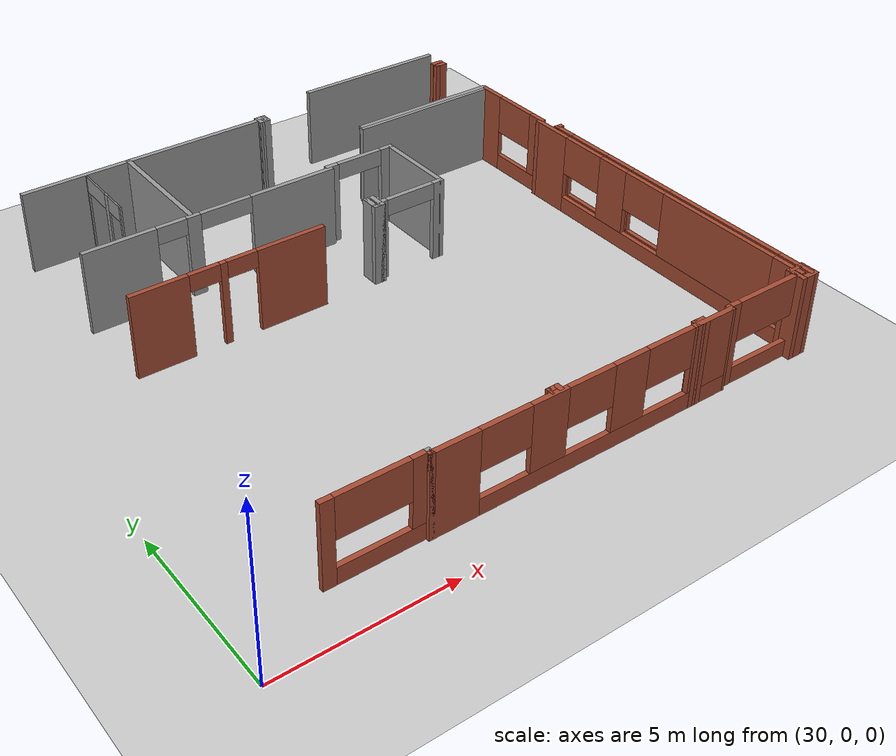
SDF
<sdf version="1.6">
 <world name="default">
  <model name="ground_plane">
   <static>1</static>
   <link name="link">
    <collision name="collision">
     <geometry><plane><normal>0 0 1</normal><size>100 100</size></plane></geometry>
     <surface><friction><ode><mu>100</mu><mu2>50</mu2></ode></friction></surface>
    </collision>
    <visual name="visual">
     <cast_shadows>0</cast_shadows>
     <geometry><plane><normal>0 0 1</normal><size>100 100</size></plane></geometry>
     <material>
      <script><uri>file://media/materials/scripts/gazebo.material</uri><name>Gazebo/Grey</name></script>
     </material>
    </visual>
   </link>
  </model>
  <model name="CVSSP">
   <pose>23.8714 24.094 0 0 -0 0</pose>
   <link name="Wall_115">
    <pose>12.4857 -11.244 0 0 -0 3.14117</pose>
    <visual name="Wall_115_Visual_0">
     <pose>-2.52803 0 1.25 0 -0 0</pose>
     <geometry><box><size>2.69541 0.15 2.5</size></box></geometry>
     <material>
      <script><uri>file://media/materials/scripts/gazebo.material</uri><name>Gazebo/Grey</name></script>
      <ambient>0.588235 0.588235 0.588235 1</ambient>
     </material>
    </visual>
    <collision name="Wall_115_Collision_0">
     <geometry><box><size>2.69541 0.15 2.5</size></box></geometry>
     <pose>-2.52803 0 1.25 0 -0 0</pose>
    </collision>
    <visual name="Wall_115_Visual_1">
     <pose>0.612242 0 1.25 0 -0 0</pose>
     <geometry><box><size>0.417444 0.15 2.5</size></box></geometry>
     <material>
      <script><uri>file://media/materials/scripts/gazebo.material</uri><name>Gazebo/Grey</name></script>
      <ambient>0.588235 0.588235 0.588235 1</ambient>
     </material>
    </visual>
    <collision name="Wall_115_Collision_1">
     <geometry><box><size>0.417444 0.15 2.5</size></box></geometry>
     <pose>0.612242 0 1.25 0 -0 0</pose>
    </collision>
    <visual name="Wall_115_Visual_2">
     <pose>2.79835 0 1.25 0 -0 0</pose>
     <geometry><box><size>2.15477 0.15 2.5</size></box></geometry>
     <material>
      <script><uri>file://media/materials/scripts/gazebo.material</uri><name>Gazebo/Grey</name></script>
      <ambient>0.588235 0.588235 0.588235 1</ambient>
     </material>
    </visual>
    <collision name="Wall_115_Collision_2">
     <geometry><box><size>2.15477 0.15 2.5</size></box></geometry>
     <pose>2.79835 0 1.25 0 -0 0</pose>
    </collision>
    <visual name="Wall_115_Visual_3">
     <pose>-0.388402 0 2.25 0 -0 0</pose>
     <geometry><box><size>1.58384 0.15 0.5</size></box></geometry>
     <material>
      <script><uri>file://media/materials/scripts/gazebo.material</uri><name>Gazebo/Grey</name></script>
      <ambient>0.588235 0.588235 0.588235 1</ambient>
     </material>
    </visual>
    <collision name="Wall_115_Collision_3">
     <geometry><box><size>1.58384 0.15 0.5</size></box></geometry>
     <pose>-0.388402 0 2.25 0 -0 0</pose>
    </collision>
    <visual name="Wall_115_Visual_4">
     <pose>1.27096 0 2.25 0 -0 0</pose>
     <geometry><box><size>0.9 0.15 0.5</size></box></geometry>
     <material>
      <script><uri>file://media/materials/scripts/gazebo.material</uri><name>Gazebo/Grey</name></script>
      <ambient>0.588235 0.588235 0.588235 1</ambient>
     </material>
    </visual>
    <collision name="Wall_115_Collision_4">
     <geometry><box><size>0.9 0.15 0.5</size></box></geometry>
     <pose>1.27096 0 2.25 0 -0 0</pose>
    </collision>
   </link>
   <link name="Wall_127">
    <collision name="Wall_127_Collision">
     <geometry><box><size>7.75 0.15 2.5</size></box></geometry>
     <pose>0 0 1.25 0 -0 0</pose>
    </collision>
    <visual name="Wall_127_Visual">
     <pose>0 0 1.25 0 -0 0</pose>
     <geometry><box><size>7.75 0.15 2.5</size></box></geometry>
     <material>
      <script><uri>file://media/materials/scripts/gazebo.material</uri><name>Gazebo/Grey</name></script>
      <ambient>0.588235 0.588235 0.588235 1</ambient>
     </material>
    </visual>
    <pose>12.4552 -7.51532 0 0 -0 0</pose>
   </link>
   <link name="Wall_129">
    <collision name="Wall_129_Collision">
     <geometry><box><size>3.75 0.15 2.5</size></box></geometry>
     <pose>0 0 1.25 0 -0 0</pose>
    </collision>
    <visual name="Wall_129_Visual">
     <pose>0 0 1.25 0 -0 0</pose>
     <geometry><box><size>3.75 0.15 2.5</size></box></geometry>
     <material>
      <script><uri>file://media/materials/scripts/gazebo.material</uri><name>Gazebo/Grey</name></script>
      <ambient>1 1 1 1</ambient>
     </material>
    </visual>
    <pose>11.8522 -9.31531 0 0 0 -1.5708</pose>
   </link>
   <link name="Wall_133">
    <collision name="Wall_133_Collision">
     <geometry><box><size>4.75 0.15 2.5</size></box></geometry>
     <pose>0 0 1.25 0 -0 0</pose>
    </collision>
    <visual name="Wall_133_Visual">
     <pose>0 0 1.25 0 -0 0</pose>
     <geometry><box><size>4.75 0.15 2.5</size></box></geometry>
     <material>
      <script><uri>file://media/materials/scripts/gazebo.material</uri><name>Gazebo/Grey</name></script>
      <ambient>1 1 1 1</ambient>
     </material>
    </visual>
    <pose>20.7823 -9.67291 0 0 -0 0</pose>
   </link>
   <link name="Wall_15">
    <pose>17.354 -11.1314 0 0 0 -0.000796</pose>
    <visual name="Wall_15_Visual_0">
     <pose>-0.94801 0 1.25 0 -0 0</pose>
     <geometry><box><size>0.40353 0.15 2.5</size></box></geometry>
     <material>
      <script><uri>file://media/materials/scripts/gazebo.material</uri><name>Gazebo/Grey</name></script>
      <ambient>0.588235 0.588235 0.588235 1</ambient>
     </material>
    </visual>
    <collision name="Wall_15_Collision_0">
     <geometry><box><size>0.40353 0.15 2.5</size></box></geometry>
     <pose>-0.94801 0 1.25 0 -0 0</pose>
    </collision>
    <visual name="Wall_15_Visual_1">
     <pose>0.933339 0 1.25 0 -0 0</pose>
     <geometry><box><size>0.432873 0.15 2.5</size></box></geometry>
     <material>
      <script><uri>file://media/materials/scripts/gazebo.material</uri><name>Gazebo/Grey</name></script>
      <ambient>0.588235 0.588235 0.588235 1</ambient>
     </material>
    </visual>
    <collision name="Wall_15_Collision_1">
     <geometry><box><size>0.432873 0.15 2.5</size></box></geometry>
     <pose>0.933339 0 1.25 0 -0 0</pose>
    </collision>
    <visual name="Wall_15_Visual_2">
     <pose>-0.014671 0 2.25 0 -0 0</pose>
     <geometry><box><size>1.46315 0.15 0.5</size></box></geometry>
     <material>
      <script><uri>file://media/materials/scripts/gazebo.material</uri><name>Gazebo/Grey</name></script>
      <ambient>0.588235 0.588235 0.588235 1</ambient>
     </material>
    </visual>
    <collision name="Wall_15_Collision_2">
     <geometry><box><size>1.46315 0.15 0.5</size></box></geometry>
     <pose>-0.014671 0 2.25 0 -0 0</pose>
    </collision>
   </link>
   <link name="Wall_150">
    <collision name="Wall_150_Collision">
     <geometry><box><size>4.80423 0.15 2.5</size></box></geometry>
     <pose>0 0 1.25 0 -0 0</pose>
    </collision>
    <visual name="Wall_150_Visual">
     <pose>0 0 1.25 0 -0 0</pose>
     <geometry><box><size>4.80423 0.15 2.5</size></box></geometry>
     <material>
      <script><uri>file://media/materials/scripts/gazebo.material</uri><name>Gazebo/Grey</name></script>
      <ambient>0.588235 0.588235 0.588235 1</ambient>
     </material>
    </visual>
    <pose>20.7564 -9.78108 0 0 -0 0.001313</pose>
   </link>
   <link name="Wall_151">
    <pose>23.0856 -11.1326 0 0 0 -1.56927</pose>
    <visual name="Wall_151_Visual_0">
     <pose>-0.991338 0 1.25 0 -0 0</pose>
     <geometry><box><size>0.876406 0.15 2.5</size></box></geometry>
     <material>
      <script><uri>file://media/materials/scripts/gazebo.material</uri><name>Gazebo/Bricks</name></script>
      <ambient>1 1 1 1</ambient>
     </material>
    </visual>
    <collision name="Wall_151_Collision_0">
     <geometry><box><size>0.876406 0.15 2.5</size></box></geometry>
     <pose>-0.991338 0 1.25 0 -0 0</pose>
    </collision>
    <visual name="Wall_151_Visual_1">
     <pose>0.438203 0 0.25 0 -0 0</pose>
     <geometry><box><size>1.98267 0.15 0.5</size></box></geometry>
     <material>
      <script><uri>file://media/materials/scripts/gazebo.material</uri><name>Gazebo/Bricks</name></script>
      <ambient>1 1 1 1</ambient>
     </material>
    </visual>
    <collision name="Wall_151_Collision_1">
     <geometry><box><size>1.98267 0.15 0.5</size></box></geometry>
     <pose>0.438203 0 0.25 0 -0 0</pose>
    </collision>
    <visual name="Wall_151_Visual_2">
     <pose>1.14601 0 1.5 0 -0 0</pose>
     <geometry><box><size>0.567066 0.15 2</size></box></geometry>
     <material>
      <script><uri>file://media/materials/scripts/gazebo.material</uri><name>Gazebo/Bricks</name></script>
      <ambient>1 1 1 1</ambient>
     </material>
    </visual>
    <collision name="Wall_151_Collision_2">
     <geometry><box><size>0.567066 0.15 2</size></box></geometry>
     <pose>1.14601 0 1.5 0 -0 0</pose>
    </collision>
    <visual name="Wall_151_Visual_3">
     <pose>0.15467 0 1.9 0 -0 0</pose>
     <geometry><box><size>1.41561 0.15 1.2</size></box></geometry>
     <material>
      <script><uri>file://media/materials/scripts/gazebo.material</uri><name>Gazebo/Bricks</name></script>
      <ambient>1 1 1 1</ambient>
     </material>
    </visual>
    <collision name="Wall_151_Collision_3">
     <geometry><box><size>1.41561 0.15 1.2</size></box></geometry>
     <pose>0.15467 0 1.9 0 -0 0</pose>
    </collision>
   </link>
   <link name="Wall_152">
    <collision name="Wall_152_Collision">
     <geometry><box><size>0.258168 0.15 2.5</size></box></geometry>
     <pose>0 0 1.25 0 -0 0</pose>
    </collision>
    <visual name="Wall_152_Visual">
     <pose>0 0 1.25 0 -0 0</pose>
     <geometry><box><size>0.258168 0.15 2.5</size></box></geometry>
     <material>
      <script><uri>file://media/materials/scripts/gazebo.material</uri><name>Gazebo/Bricks</name></script>
      <ambient>1 1 1 1</ambient>
     </material>
    </visual>
    <pose>23.0336 -12.4904 0 0 -0 3.14159</pose>
   </link>
   <link name="Wall_153">
    <pose>22.9796 -17.562 0 0 0 -1.5708</pose>
    <visual name="Wall_153_Visual_0">
     <pose>-4.47045 0 1.25 0 -0 0</pose>
     <geometry><box><size>1.35898 0.15 2.5</size></box></geometry>
     <material>
      <script><uri>file://media/materials/scripts/gazebo.material</uri><name>Gazebo/Bricks</name></script>
      <ambient>1 1 1 1</ambient>
     </material>
    </visual>
    <collision name="Wall_153_Collision_0">
     <geometry><box><size>1.35898 0.15 2.5</size></box></geometry>
     <pose>-4.47045 0 1.25 0 -0 0</pose>
    </collision>
    <visual name="Wall_153_Visual_1">
     <pose>0.679489 0 0.25 0 -0 0</pose>
     <geometry><box><size>8.9409 0.15 0.5</size></box></geometry>
     <material>
      <script><uri>file://media/materials/scripts/gazebo.material</uri><name>Gazebo/Bricks</name></script>
      <ambient>1 1 1 1</ambient>
     </material>
    </visual>
    <collision name="Wall_153_Collision_1">
     <geometry><box><size>8.9409 0.15 0.5</size></box></geometry>
     <pose>0.679489 0 0.25 0 -0 0</pose>
    </collision>
    <visual name="Wall_153_Visual_2">
     <pose>-1.77367 0 1.5 0 -0 0</pose>
     <geometry><box><size>1.06672 0.15 2</size></box></geometry>
     <material>
      <script><uri>file://media/materials/scripts/gazebo.material</uri><name>Gazebo/Bricks</name></script>
      <ambient>1 1 1 1</ambient>
     </material>
    </visual>
    <collision name="Wall_153_Collision_2">
     <geometry><box><size>1.06672 0.15 2</size></box></geometry>
     <pose>-1.77367 0 1.5 0 -0 0</pose>
    </collision>
    <visual name="Wall_153_Visual_3">
     <pose>2.21324 0 1.5 0 -0 0</pose>
     <geometry><box><size>3.95063 0.15 2</size></box></geometry>
     <material>
      <script><uri>file://media/materials/scripts/gazebo.material</uri><name>Gazebo/Bricks</name></script>
      <ambient>1 1 1 1</ambient>
     </material>
    </visual>
    <collision name="Wall_153_Collision_3">
     <geometry><box><size>3.95063 0.15 2</size></box></geometry>
     <pose>2.21324 0 1.5 0 -0 0</pose>
    </collision>
    <visual name="Wall_153_Visual_4">
     <pose>4.97864 0 1.5 0 -0 0</pose>
     <geometry><box><size>0.342598 0.15 2</size></box></geometry>
     <material>
      <script><uri>file://media/materials/scripts/gazebo.material</uri><name>Gazebo/Bricks</name></script>
      <ambient>1 1 1 1</ambient>
     </material>
    </visual>
    <collision name="Wall_153_Collision_4">
     <geometry><box><size>0.342598 0.15 2</size></box></geometry>
     <pose>4.97864 0 1.5 0 -0 0</pose>
    </collision>
    <visual name="Wall_153_Visual_5">
     <pose>-3.04899 0 1.9 0 -0 0</pose>
     <geometry><box><size>1.48394 0.15 1.2</size></box></geometry>
     <material>
      <script><uri>file://media/materials/scripts/gazebo.material</uri><name>Gazebo/Bricks</name></script>
      <ambient>1 1 1 1</ambient>
     </material>
    </visual>
    <collision name="Wall_153_Collision_5">
     <geometry><box><size>1.48394 0.15 1.2</size></box></geometry>
     <pose>-3.04899 0 1.9 0 -0 0</pose>
    </collision>
    <visual name="Wall_153_Visual_6">
     <pose>-0.50119 0 1.9 0 -0 0</pose>
     <geometry><box><size>1.47823 0.15 1.2</size></box></geometry>
     <material>
      <script><uri>file://media/materials/scripts/gazebo.material</uri><name>Gazebo/Bricks</name></script>
      <ambient>1 1 1 1</ambient>
     </material>
    </visual>
    <collision name="Wall_153_Collision_6">
     <geometry><box><size>1.47823 0.15 1.2</size></box></geometry>
     <pose>-0.50119 0 1.9 0 -0 0</pose>
    </collision>
    <visual name="Wall_153_Visual_7">
     <pose>4.49795 0 1.9 0 -0 0</pose>
     <geometry><box><size>0.618781 0.15 1.2</size></box></geometry>
     <material>
      <script><uri>file://media/materials/scripts/gazebo.material</uri><name>Gazebo/Bricks</name></script>
      <ambient>1 1 1 1</ambient>
     </material>
    </visual>
    <collision name="Wall_153_Collision_7">
     <geometry><box><size>0.618781 0.15 1.2</size></box></geometry>
     <pose>4.49795 0 1.9 0 -0 0</pose>
    </collision>
   </link>
   <link name="Wall_157">
    <pose>23.1934 -17.9306 0 0 0 -1.5708</pose>
    <visual name="Wall_157_Visual_0">
     <pose>-4.53836 0 1.25 0 -0 0</pose>
     <geometry><box><size>0.746297 0.15 2.5</size></box></geometry>
     <material>
      <script><uri>file://media/materials/scripts/gazebo.material</uri><name>Gazebo/Bricks</name></script>
      <ambient>1 1 1 1</ambient>
     </material>
    </visual>
    <collision name="Wall_157_Collision_0">
     <geometry><box><size>0.746297 0.15 2.5</size></box></geometry>
     <pose>-4.53836 0 1.25 0 -0 0</pose>
    </collision>
    <visual name="Wall_157_Visual_1">
     <pose>0.373148 0 0.25 0 -0 0</pose>
     <geometry><box><size>9.07673 0.15 0.5</size></box></geometry>
     <material>
      <script><uri>file://media/materials/scripts/gazebo.material</uri><name>Gazebo/Bricks</name></script>
      <ambient>1 1 1 1</ambient>
     </material>
    </visual>
    <collision name="Wall_157_Collision_1">
     <geometry><box><size>9.07673 0.15 0.5</size></box></geometry>
     <pose>0.373148 0 0.25 0 -0 0</pose>
    </collision>
    <visual name="Wall_157_Visual_2">
     <pose>-2.13652 0 1.5 0 -0 0</pose>
     <geometry><box><size>1.06672 0.15 2</size></box></geometry>
     <material>
      <script><uri>file://media/materials/scripts/gazebo.material</uri><name>Gazebo/Bricks</name></script>
      <ambient>1 1 1 1</ambient>
     </material>
    </visual>
    <collision name="Wall_157_Collision_2">
     <geometry><box><size>1.06672 0.15 2</size></box></geometry>
     <pose>-2.13652 0 1.5 0 -0 0</pose>
    </collision>
    <visual name="Wall_157_Visual_3">
     <pose>1.84748 0 1.5 0 -0 0</pose>
     <geometry><box><size>3.94482 0.15 2</size></box></geometry>
     <material>
      <script><uri>file://media/materials/scripts/gazebo.material</uri><name>Gazebo/Bricks</name></script>
      <ambient>1 1 1 1</ambient>
     </material>
    </visual>
    <collision name="Wall_157_Collision_3">
     <geometry><box><size>3.94482 0.15 2</size></box></geometry>
     <pose>1.84748 0 1.5 0 -0 0</pose>
    </collision>
    <visual name="Wall_157_Visual_4">
     <pose>4.66639 0 1.5 0 -0 0</pose>
     <geometry><box><size>0.49024 0.15 2</size></box></geometry>
     <material>
      <script><uri>file://media/materials/scripts/gazebo.material</uri><name>Gazebo/Bricks</name></script>
      <ambient>1 1 1 1</ambient>
     </material>
    </visual>
    <collision name="Wall_157_Collision_4">
     <geometry><box><size>0.49024 0.15 2</size></box></geometry>
     <pose>4.66639 0 1.5 0 -0 0</pose>
    </collision>
    <visual name="Wall_157_Visual_5">
     <pose>-3.41755 0 1.9 0 -0 0</pose>
     <geometry><box><size>1.49533 0.15 1.2</size></box></geometry>
     <material>
      <script><uri>file://media/materials/scripts/gazebo.material</uri><name>Gazebo/Bricks</name></script>
      <ambient>1 1 1 1</ambient>
     </material>
    </visual>
    <collision name="Wall_157_Collision_5">
     <geometry><box><size>1.49533 0.15 1.2</size></box></geometry>
     <pose>-3.41755 0 1.9 0 -0 0</pose>
    </collision>
    <visual name="Wall_157_Visual_6">
     <pose>-0.864046 0 1.9 0 -0 0</pose>
     <geometry><box><size>1.47823 0.15 1.2</size></box></geometry>
     <material>
      <script><uri>file://media/materials/scripts/gazebo.material</uri><name>Gazebo/Bricks</name></script>
      <ambient>1 1 1 1</ambient>
     </material>
    </visual>
    <collision name="Wall_157_Collision_6">
     <geometry><box><size>1.47823 0.15 1.2</size></box></geometry>
     <pose>-0.864046 0 1.9 0 -0 0</pose>
    </collision>
    <visual name="Wall_157_Visual_7">
     <pose>4.12058 0 1.9 0 -0 0</pose>
     <geometry><box><size>0.601383 0.15 1.2</size></box></geometry>
     <material>
      <script><uri>file://media/materials/scripts/gazebo.material</uri><name>Gazebo/Bricks</name></script>
      <ambient>1 1 1 1</ambient>
     </material>
    </visual>
    <collision name="Wall_157_Collision_7">
     <geometry><box><size>0.601383 0.15 1.2</size></box></geometry>
     <pose>4.12058 0 1.9 0 -0 0</pose>
    </collision>
   </link>
   <link name="Wall_161">
    <collision name="Wall_161_Collision">
     <geometry><box><size>0.590287 0.15 2.5</size></box></geometry>
     <pose>0 0 1.25 0 -0 0</pose>
    </collision>
    <visual name="Wall_161_Visual">
     <pose>0 0 1.25 0 -0 0</pose>
     <geometry><box><size>0.590287 0.15 2.5</size></box></geometry>
     <material>
      <script><uri>file://media/materials/scripts/gazebo.material</uri><name>Gazebo/Bricks</name></script>
      <ambient>1 1 1 1</ambient>
     </material>
    </visual>
    <pose>23.0292 -22.4138 0 0 -0 0</pose>
   </link>
   <link name="Wall_162">
    <collision name="Wall_162_Collision">
     <geometry><box><size>0.573252 0.15 2.5</size></box></geometry>
     <pose>0 0 1.25 0 -0 0</pose>
    </collision>
    <visual name="Wall_162_Visual">
     <pose>0 0 1.25 0 -0 0</pose>
     <geometry><box><size>0.573252 0.15 2.5</size></box></geometry>
     <material>
      <script><uri>file://media/materials/scripts/gazebo.material</uri><name>Gazebo/Bricks</name></script>
      <ambient>1 1 1 1</ambient>
     </material>
    </visual>
    <pose>23.2493 -22.6253 0 0 0 -1.5708</pose>
   </link>
   <link name="Wall_163">
    <collision name="Wall_163_Collision">
     <geometry><box><size>0.584532 0.15 2.5</size></box></geometry>
     <pose>0 0 1.25 0 -0 0</pose>
    </collision>
    <visual name="Wall_163_Visual">
     <pose>0 0 1.25 0 -0 0</pose>
     <geometry><box><size>0.584532 0.15 2.5</size></box></geometry>
     <material>
      <script><uri>file://media/materials/scripts/gazebo.material</uri><name>Gazebo/Bricks</name></script>
      <ambient>1 1 1 1</ambient>
     </material>
    </visual>
    <pose>23.0321 -22.8369 0 0 -0 3.14159</pose>
   </link>
   <link name="Wall_164">
    <collision name="Wall_164_Collision">
     <geometry><box><size>0.567536 0.15 2.5</size></box></geometry>
     <pose>0 0 1.25 0 -0 0</pose>
    </collision>
    <visual name="Wall_164_Visual">
     <pose>0 0 1.25 0 -0 0</pose>
     <geometry><box><size>0.567536 0.15 2.5</size></box></geometry>
     <material>
      <script><uri>file://media/materials/scripts/gazebo.material</uri><name>Gazebo/Bricks</name></script>
      <ambient>1 1 1 1</ambient>
     </material>
    </visual>
    <pose>22.8148 -22.6282 0 0 -0 1.5708</pose>
   </link>
   <link name="Wall_166">
    <collision name="Wall_166_Collision">
     <geometry><box><size>4.75 0.15 2.5</size></box></geometry>
     <pose>0 0 1.25 0 -0 0</pose>
    </collision>
    <visual name="Wall_166_Visual">
     <pose>0 0 1.25 0 -0 0</pose>
     <geometry><box><size>4.75 0.15 2.5</size></box></geometry>
     <material>
      <script><uri>file://media/materials/scripts/gazebo.material</uri><name>Gazebo/Grey</name></script>
      <ambient>0.588235 0.588235 0.588235 1</ambient>
     </material>
    </visual>
    <pose>20.7514 -6.79871 0 0 -0 0</pose>
   </link>
   <link name="Wall_174">
    <collision name="Wall_174_Collision">
     <geometry><box><size>2.59517 0.15 2.5</size></box></geometry>
     <pose>0 0 1.25 0 -0 0</pose>
    </collision>
    <visual name="Wall_174_Visual">
     <pose>0 0 1.25 0 -0 0</pose>
     <geometry><box><size>2.59517 0.15 2.5</size></box></geometry>
     <material>
      <script><uri>file://media/materials/scripts/gazebo.material</uri><name>Gazebo/Grey</name></script>
      <ambient>0.588235 0.588235 0.588235 1</ambient>
     </material>
    </visual>
    <pose>18.4291 -12.3547 0 0 0 -1.5705</pose>
   </link>
   <link name="Wall_175">
    <pose>17.3795 -13.5773 0 0 -0 3.14159</pose>
    <visual name="Wall_175_Visual_0">
     <pose>-0.944345 0 1.25 0 -0 0</pose>
     <geometry><box><size>0.36131 0.15 2.5</size></box></geometry>
     <material>
      <script><uri>file://media/materials/scripts/gazebo.material</uri><name>Gazebo/Grey</name></script>
      <ambient>0.588235 0.588235 0.588235 1</ambient>
     </material>
    </visual>
    <collision name="Wall_175_Collision_0">
     <geometry><box><size>0.36131 0.15 2.5</size></box></geometry>
     <pose>-0.944345 0 1.25 0 -0 0</pose>
    </collision>
    <visual name="Wall_175_Visual_1">
     <pose>0.960655 0 1.25 0 -0 0</pose>
     <geometry><box><size>0.32869 0.15 2.5</size></box></geometry>
     <material>
      <script><uri>file://media/materials/scripts/gazebo.material</uri><name>Gazebo/Grey</name></script>
      <ambient>0.588235 0.588235 0.588235 1</ambient>
     </material>
    </visual>
    <collision name="Wall_175_Collision_1">
     <geometry><box><size>0.32869 0.15 2.5</size></box></geometry>
     <pose>0.960655 0 1.25 0 -0 0</pose>
    </collision>
    <visual name="Wall_175_Visual_2">
     <pose>0.01631 0 2.25 0 -0 0</pose>
     <geometry><box><size>1.56 0.15 0.5</size></box></geometry>
     <material>
      <script><uri>file://media/materials/scripts/gazebo.material</uri><name>Gazebo/Grey</name></script>
      <ambient>0.588235 0.588235 0.588235 1</ambient>
     </material>
    </visual>
    <collision name="Wall_175_Collision_2">
     <geometry><box><size>1.56 0.15 0.5</size></box></geometry>
     <pose>0.01631 0 2.25 0 -0 0</pose>
    </collision>
   </link>
   <link name="Wall_183">
    <pose>9.90751 -22.6223 0 0 -0 0</pose>
    <visual name="Wall_183_Visual_0">
     <pose>-1.25422 0 1.25 0 -0 0</pose>
     <geometry><box><size>0.361568 0.15 2.5</size></box></geometry>
     <material>
      <script><uri>file://media/materials/scripts/gazebo.material</uri><name>Gazebo/Bricks</name></script>
      <ambient>1 1 1 1</ambient>
     </material>
    </visual>
    <collision name="Wall_183_Collision_0">
     <geometry><box><size>0.361568 0.15 2.5</size></box></geometry>
     <pose>-1.25422 0 1.25 0 -0 0</pose>
    </collision>
    <visual name="Wall_183_Visual_1">
     <pose>0.180784 0 0.25 0 -0 0</pose>
     <geometry><box><size>2.50843 0.15 0.5</size></box></geometry>
     <material>
      <script><uri>file://media/materials/scripts/gazebo.material</uri><name>Gazebo/Bricks</name></script>
      <ambient>1 1 1 1</ambient>
     </material>
    </visual>
    <collision name="Wall_183_Collision_1">
     <geometry><box><size>2.50843 0.15 0.5</size></box></geometry>
     <pose>0.180784 0 0.25 0 -0 0</pose>
    </collision>
    <visual name="Wall_183_Visual_2">
     <pose>1.17403 0 1.5 0 -0 0</pose>
     <geometry><box><size>0.521945 0.15 2</size></box></geometry>
     <material>
      <script><uri>file://media/materials/scripts/gazebo.material</uri><name>Gazebo/Bricks</name></script>
      <ambient>1 1 1 1</ambient>
     </material>
    </visual>
    <collision name="Wall_183_Collision_2">
     <geometry><box><size>0.521945 0.15 2</size></box></geometry>
     <pose>1.17403 0 1.5 0 -0 0</pose>
    </collision>
    <visual name="Wall_183_Visual_3">
     <pose>-0.080189 0 1.9 0 -0 0</pose>
     <geometry><box><size>1.98649 0.15 1.2</size></box></geometry>
     <material>
      <script><uri>file://media/materials/scripts/gazebo.material</uri><name>Gazebo/Bricks</name></script>
      <ambient>1 1 1 1</ambient>
     </material>
    </visual>
    <collision name="Wall_183_Collision_3">
     <geometry><box><size>1.98649 0.15 1.2</size></box></geometry>
     <pose>-0.080189 0 1.9 0 -0 0</pose>
    </collision>
   </link>
   <link name="Wall_184">
    <collision name="Wall_184_Collision">
     <geometry><box><size>0.15 0.15 2.5</size></box></geometry>
     <pose>0 0 1.25 0 -0 0</pose>
    </collision>
    <visual name="Wall_184_Visual">
     <pose>0 0 1.25 0 -0 0</pose>
     <geometry><box><size>0.15 0.15 2.5</size></box></geometry>
     <material>
      <script><uri>file://media/materials/scripts/gazebo.material</uri><name>Gazebo/Grey</name></script>
      <ambient>1 1 1 1</ambient>
     </material>
    </visual>
    <pose>11.2675 -22.6223 0 0 -0 0</pose>
   </link>
   <link name="Wall_186">
    <collision name="Wall_186_Collision">
     <geometry><box><size>0.25 0.15 2.5</size></box></geometry>
     <pose>0 0 1.25 0 -0 0</pose>
    </collision>
    <visual name="Wall_186_Visual">
     <pose>0 0 1.25 0 -0 0</pose>
     <geometry><box><size>0.25 0.15 2.5</size></box></geometry>
     <material>
      <script><uri>file://media/materials/scripts/gazebo.material</uri><name>Gazebo/Bricks</name></script>
      <ambient>1 1 1 1</ambient>
     </material>
    </visual>
    <pose>11.2675 -22.6723 0 0 0 -1.5708</pose>
   </link>
   <link name="Wall_187">
    <pose>15.8175 -22.7223 0 0 -0 0</pose>
    <visual name="Wall_187_Visual_0">
     <pose>-3.92561 0 1.25 0 -0 0</pose>
     <geometry><box><size>1.39878 0.15 2.5</size></box></geometry>
     <material>
      <script><uri>file://media/materials/scripts/gazebo.material</uri><name>Gazebo/Bricks</name></script>
      <ambient>1 1 1 1</ambient>
     </material>
    </visual>
    <collision name="Wall_187_Collision_0">
     <geometry><box><size>1.39878 0.15 2.5</size></box></geometry>
     <pose>-3.92561 0 1.25 0 -0 0</pose>
    </collision>
    <visual name="Wall_187_Visual_1">
     <pose>0.699388 0 0.25 0 -0 0</pose>
     <geometry><box><size>7.85123 0.15 0.5</size></box></geometry>
     <material>
      <script><uri>file://media/materials/scripts/gazebo.material</uri><name>Gazebo/Bricks</name></script>
      <ambient>1 1 1 1</ambient>
     </material>
    </visual>
    <collision name="Wall_187_Collision_1">
     <geometry><box><size>7.85123 0.15 0.5</size></box></geometry>
     <pose>0.699388 0 0.25 0 -0 0</pose>
    </collision>
    <visual name="Wall_187_Visual_2">
     <pose>-1.23106 0 1.5 0 -0 0</pose>
     <geometry><box><size>1.07201 0.15 2</size></box></geometry>
     <material>
      <script><uri>file://media/materials/scripts/gazebo.material</uri><name>Gazebo/Bricks</name></script>
      <ambient>1 1 1 1</ambient>
     </material>
    </visual>
    <collision name="Wall_187_Collision_2">
     <geometry><box><size>1.07201 0.15 2</size></box></geometry>
     <pose>-1.23106 0 1.5 0 -0 0</pose>
    </collision>
    <visual name="Wall_187_Visual_3">
     <pose>1.24079 0 1.5 0 -0 0</pose>
     <geometry><box><size>1.05883 0.15 2</size></box></geometry>
     <material>
      <script><uri>file://media/materials/scripts/gazebo.material</uri><name>Gazebo/Bricks</name></script>
      <ambient>1 1 1 1</ambient>
     </material>
    </visual>
    <collision name="Wall_187_Collision_3">
     <geometry><box><size>1.05883 0.15 2</size></box></geometry>
     <pose>1.24079 0 1.5 0 -0 0</pose>
    </collision>
    <visual name="Wall_187_Visual_4">
     <pose>3.94036 0 1.5 0 -0 0</pose>
     <geometry><box><size>1.36927 0.15 2</size></box></geometry>
     <material>
      <script><uri>file://media/materials/scripts/gazebo.material</uri><name>Gazebo/Bricks</name></script>
      <ambient>1 1 1 1</ambient>
     </material>
    </visual>
    <collision name="Wall_187_Collision_4">
     <geometry><box><size>1.36927 0.15 2</size></box></geometry>
     <pose>3.94036 0 1.5 0 -0 0</pose>
    </collision>
    <visual name="Wall_187_Visual_5">
     <pose>-2.49665 0 1.9 0 -0 0</pose>
     <geometry><box><size>1.45916 0.15 1.2</size></box></geometry>
     <material>
      <script><uri>file://media/materials/scripts/gazebo.material</uri><name>Gazebo/Bricks</name></script>
      <ambient>1 1 1 1</ambient>
     </material>
    </visual>
    <collision name="Wall_187_Collision_5">
     <geometry><box><size>1.45916 0.15 1.2</size></box></geometry>
     <pose>-2.49665 0 1.9 0 -0 0</pose>
    </collision>
    <visual name="Wall_187_Visual_6">
     <pose>0.008161 0 1.9 0 -0 0</pose>
     <geometry><box><size>1.40643 0.15 1.2</size></box></geometry>
     <material>
      <script><uri>file://media/materials/scripts/gazebo.material</uri><name>Gazebo/Bricks</name></script>
      <ambient>1 1 1 1</ambient>
     </material>
    </visual>
    <collision name="Wall_187_Collision_6">
     <geometry><box><size>1.40643 0.15 1.2</size></box></geometry>
     <pose>0.008161 0 1.9 0 -0 0</pose>
    </collision>
    <visual name="Wall_187_Visual_7">
     <pose>2.51297 0 1.9 0 -0 0</pose>
     <geometry><box><size>1.48553 0.15 1.2</size></box></geometry>
     <material>
      <script><uri>file://media/materials/scripts/gazebo.material</uri><name>Gazebo/Bricks</name></script>
      <ambient>1 1 1 1</ambient>
     </material>
    </visual>
    <collision name="Wall_187_Collision_7">
     <geometry><box><size>1.48553 0.15 1.2</size></box></geometry>
     <pose>2.51297 0 1.9 0 -0 0</pose>
    </collision>
   </link>
   <link name="Wall_188">
    <collision name="Wall_188_Collision">
     <geometry><box><size>0.233158 0.15 2.5</size></box></geometry>
     <pose>0 0 1.25 0 -0 0</pose>
    </collision>
    <visual name="Wall_188_Visual">
     <pose>0 0 1.25 0 -0 0</pose>
     <geometry><box><size>0.233158 0.15 2.5</size></box></geometry>
     <material>
      <script><uri>file://media/materials/scripts/gazebo.material</uri><name>Gazebo/Bricks</name></script>
      <ambient>1 1 1 1</ambient>
     </material>
    </visual>
    <pose>20.3718 -22.681 0 0 -0 1.46663</pose>
   </link>
   <link name="Wall_189">
    <pose>21.5512 -22.631 0 0 -0 0</pose>
    <visual name="Wall_189_Visual_0">
     <pose>-1.02474 0 1.25 0 -0 0</pose>
     <geometry><box><size>0.450521 0.15 2.5</size></box></geometry>
     <material>
      <script><uri>file://media/materials/scripts/gazebo.material</uri><name>Gazebo/Bricks</name></script>
      <ambient>1 1 1 1</ambient>
     </material>
    </visual>
    <collision name="Wall_189_Collision_0">
     <geometry><box><size>0.450521 0.15 2.5</size></box></geometry>
     <pose>-1.02474 0 1.25 0 -0 0</pose>
    </collision>
    <visual name="Wall_189_Visual_1">
     <pose>0.22526 0 0.25 0 -0 0</pose>
     <geometry><box><size>2.04948 0.15 0.5</size></box></geometry>
     <material>
      <script><uri>file://media/materials/scripts/gazebo.material</uri><name>Gazebo/Bricks</name></script>
      <ambient>1 1 1 1</ambient>
     </material>
    </visual>
    <collision name="Wall_189_Collision_1">
     <geometry><box><size>2.04948 0.15 0.5</size></box></geometry>
     <pose>0.22526 0 0.25 0 -0 0</pose>
    </collision>
    <visual name="Wall_189_Visual_2">
     <pose>1.2251 0 1.5 0 -0 0</pose>
     <geometry><box><size>0.04981 0.15 2</size></box></geometry>
     <material>
      <script><uri>file://media/materials/scripts/gazebo.material</uri><name>Gazebo/Bricks</name></script>
      <ambient>1 1 1 1</ambient>
     </material>
    </visual>
    <collision name="Wall_189_Collision_2">
     <geometry><box><size>0.04981 0.15 2</size></box></geometry>
     <pose>1.2251 0 1.5 0 -0 0</pose>
    </collision>
    <visual name="Wall_189_Visual_3">
     <pose>0.200356 0 1.9 0 -0 0</pose>
     <geometry><box><size>1.99967 0.15 1.2</size></box></geometry>
     <material>
      <script><uri>file://media/materials/scripts/gazebo.material</uri><name>Gazebo/Bricks</name></script>
      <ambient>1 1 1 1</ambient>
     </material>
    </visual>
    <collision name="Wall_189_Collision_3">
     <geometry><box><size>1.99967 0.15 1.2</size></box></geometry>
     <pose>0.200356 0 1.9 0 -0 0</pose>
    </collision>
   </link>
   <link name="Wall_194">
    <collision name="Wall_194_Collision">
     <geometry><box><size>0.25 0.15 2.5</size></box></geometry>
     <pose>0 0 1.25 0 -0 0</pose>
    </collision>
    <visual name="Wall_194_Visual">
     <pose>0 0 1.25 0 -0 0</pose>
     <geometry><box><size>0.25 0.15 2.5</size></box></geometry>
     <material>
      <script><uri>file://media/materials/scripts/gazebo.material</uri><name>Gazebo/Bricks</name></script>
      <ambient>1 1 1 1</ambient>
     </material>
    </visual>
    <pose>14.7116 -22.6138 0 0 -0 1.5708</pose>
   </link>
   <link name="Wall_195">
    <collision name="Wall_195_Collision">
     <geometry><box><size>0.368528 0.15 2.5</size></box></geometry>
     <pose>0 0 1.25 0 -0 0</pose>
    </collision>
    <visual name="Wall_195_Visual">
     <pose>0 0 1.25 0 -0 0</pose>
     <geometry><box><size>0.368528 0.15 2.5</size></box></geometry>
     <material>
      <script><uri>file://media/materials/scripts/gazebo.material</uri><name>Gazebo/Bricks</name></script>
      <ambient>1 1 1 1</ambient>
     </material>
    </visual>
    <pose>14.8209 -22.562 0 0 -0 0.016017</pose>
   </link>
   <link name="Wall_196">
    <collision name="Wall_196_Collision">
     <geometry><box><size>0.25 0.15 2.5</size></box></geometry>
     <pose>0 0 1.25 0 -0 0</pose>
    </collision>
    <visual name="Wall_196_Visual">
     <pose>0 0 1.25 0 -0 0</pose>
     <geometry><box><size>0.25 0.15 2.5</size></box></geometry>
     <material>
      <script><uri>file://media/materials/scripts/gazebo.material</uri><name>Gazebo/Bricks</name></script>
      <ambient>1 1 1 1</ambient>
     </material>
    </visual>
    <pose>14.9301 -22.6103 0 0 0 -1.5708</pose>
   </link>
   <link name="Wall_198">
    <collision name="Wall_198_Collision">
     <geometry><box><size>0.264462 0.15 2.5</size></box></geometry>
     <pose>0 0 1.25 0 -0 0</pose>
    </collision>
    <visual name="Wall_198_Visual">
     <pose>0 0 1.25 0 -0 0</pose>
     <geometry><box><size>0.264462 0.15 2.5</size></box></geometry>
     <material>
      <script><uri>file://media/materials/scripts/gazebo.material</uri><name>Gazebo/Bricks</name></script>
      <ambient>1 1 1 1</ambient>
     </material>
    </visual>
    <pose>23.2376 -13.0908 0 0 -0 0</pose>
   </link>
   <link name="Wall_749">
    <collision name="Wall_749_Collision">
     <geometry><box><size>0.354987 0.15 2.5</size></box></geometry>
     <pose>0 0 1.25 0 -0 0</pose>
    </collision>
    <visual name="Wall_749_Visual">
     <pose>0 0 1.25 0 -0 0</pose>
     <geometry><box><size>0.354987 0.15 2.5</size></box></geometry>
     <material>
      <script><uri>file://media/materials/scripts/gazebo.material</uri><name>Gazebo/Grey</name></script>
      <ambient>1 1 1 1</ambient>
     </material>
    </visual>
    <pose>16.2901 -7.41966 0 0 -0 0</pose>
   </link>
   <link name="Wall_750">
    <collision name="Wall_750_Collision">
     <geometry><box><size>0.368212 0.15 2.5</size></box></geometry>
     <pose>0 0 1.25 0 -0 0</pose>
    </collision>
    <visual name="Wall_750_Visual">
     <pose>0 0 1.25 0 -0 0</pose>
     <geometry><box><size>0.368212 0.15 2.5</size></box></geometry>
     <material>
      <script><uri>file://media/materials/scripts/gazebo.material</uri><name>Gazebo/Grey</name></script>
      <ambient>1 1 1 1</ambient>
     </material>
    </visual>
    <pose>16.3926 -7.52876 0 0 0 -1.5708</pose>
   </link>
   <link name="Wall_751">
    <collision name="Wall_751_Collision">
     <geometry><box><size>0.361703 0.15 2.5</size></box></geometry>
     <pose>0 0 1.25 0 -0 0</pose>
    </collision>
    <visual name="Wall_751_Visual">
     <pose>0 0 1.25 0 -0 0</pose>
     <geometry><box><size>0.361703 0.15 2.5</size></box></geometry>
     <material>
      <script><uri>file://media/materials/scripts/gazebo.material</uri><name>Gazebo/Grey</name></script>
      <ambient>1 1 1 1</ambient>
     </material>
    </visual>
    <pose>16.2868 -7.63787 0 0 -0 3.14159</pose>
   </link>
   <link name="Wall_752">
    <collision name="Wall_752_Collision">
     <geometry><box><size>0.368313 0.15 2.5</size></box></geometry>
     <pose>0 0 1.25 0 -0 0</pose>
    </collision>
    <visual name="Wall_752_Visual">
     <pose>0 0 1.25 0 -0 0</pose>
     <geometry><box><size>0.368313 0.15 2.5</size></box></geometry>
     <material>
      <script><uri>file://media/materials/scripts/gazebo.material</uri><name>Gazebo/Grey</name></script>
      <ambient>1 1 1 1</ambient>
     </material>
    </visual>
    <pose>16.1843 -7.52876 0 0 -0 1.5405</pose>
   </link>
   <link name="Wall_755">
    <collision name="Wall_755_Collision">
     <geometry><box><size>0.407888 0.15 2.5</size></box></geometry>
     <pose>0 0 1.25 0 -0 0</pose>
    </collision>
    <visual name="Wall_755_Visual">
     <pose>0 0 1.25 0 -0 0</pose>
     <geometry><box><size>0.407888 0.15 2.5</size></box></geometry>
     <material>
      <script><uri>file://media/materials/scripts/gazebo.material</uri><name>Gazebo/Bricks</name></script>
      <ambient>1 1 1 1</ambient>
     </material>
    </visual>
    <pose>22.9423 -7.41966 0 0 -0 3.14159</pose>
   </link>
   <link name="Wall_756">
    <collision name="Wall_756_Collision">
     <geometry><box><size>0.322052 0.15 2.5</size></box></geometry>
     <pose>0 0 1.25 0 -0 0</pose>
    </collision>
    <visual name="Wall_756_Visual">
     <pose>0 0 1.25 0 -0 0</pose>
     <geometry><box><size>0.322052 0.15 2.5</size></box></geometry>
     <material>
      <script><uri>file://media/materials/scripts/gazebo.material</uri><name>Gazebo/Bricks</name></script>
      <ambient>1 1 1 1</ambient>
     </material>
    </visual>
    <pose>22.8134 -7.50562 0 0 0 -1.5708</pose>
   </link>
   <link name="Wall_757">
    <collision name="Wall_757_Collision">
     <geometry><box><size>0.4145 0.15 2.5</size></box></geometry>
     <pose>0 0 1.25 0 -0 0</pose>
    </collision>
    <visual name="Wall_757_Visual">
     <pose>0 0 1.25 0 -0 0</pose>
     <geometry><box><size>0.4145 0.15 2.5</size></box></geometry>
     <material>
      <script><uri>file://media/materials/scripts/gazebo.material</uri><name>Gazebo/Bricks</name></script>
      <ambient>1 1 1 1</ambient>
     </material>
    </visual>
    <pose>22.9456 -7.59158 0 0 -0 0</pose>
   </link>
   <link name="Wall_764">
    <collision name="Wall_764_Collision">
     <geometry><box><size>0.25 0.15 2.5</size></box></geometry>
     <pose>0 0 1.25 0 -0 0</pose>
    </collision>
    <visual name="Wall_764_Visual">
     <pose>0 0 1.25 0 -0 0</pose>
     <geometry><box><size>0.25 0.15 2.5</size></box></geometry>
     <material>
      <script><uri>file://media/materials/scripts/gazebo.material</uri><name>Gazebo/Bricks</name></script>
      <ambient>1 1 1 1</ambient>
     </material>
    </visual>
    <pose>19.2424 -22.6742 0 0 -0 1.5708</pose>
   </link>
   <link name="Wall_765">
    <collision name="Wall_765_Collision">
     <geometry><box><size>0.393343 0.15 2.5</size></box></geometry>
     <pose>0 0 1.25 0 -0 0</pose>
    </collision>
    <visual name="Wall_765_Visual">
     <pose>0 0 1.25 0 -0 0</pose>
     <geometry><box><size>0.393343 0.15 2.5</size></box></geometry>
     <material>
      <script><uri>file://media/materials/scripts/gazebo.material</uri><name>Gazebo/Bricks</name></script>
      <ambient>1 1 1 1</ambient>
     </material>
    </visual>
    <pose>19.364 -22.6247 0 0 0 -0.004698</pose>
   </link>
   <link name="Wall_766">
    <collision name="Wall_766_Collision">
     <geometry><box><size>0.25 0.15 2.5</size></box></geometry>
     <pose>0 0 1.25 0 -0 0</pose>
    </collision>
    <visual name="Wall_766_Visual">
     <pose>0 0 1.25 0 -0 0</pose>
     <geometry><box><size>0.25 0.15 2.5</size></box></geometry>
     <material>
      <script><uri>file://media/materials/scripts/gazebo.material</uri><name>Gazebo/Bricks</name></script>
      <ambient>1 1 1 1</ambient>
     </material>
    </visual>
    <pose>19.4857 -22.6753 0 0 0 -1.5708</pose>
   </link>
   <link name="Wall_772">
    <pose>11.5684 -13.7156 0 0 -0 3.14159</pose>
    <visual name="Wall_772_Visual_0">
     <pose>-1.83988 0 1.25 0 -0 0</pose>
     <geometry><box><size>2.07023 0.15 2.5</size></box></geometry>
     <material>
      <script><uri>file://media/materials/scripts/gazebo.material</uri><name>Gazebo/Bricks</name></script>
      <ambient>1 1 1 1</ambient>
     </material>
    </visual>
    <collision name="Wall_772_Collision_0">
     <geometry><box><size>2.07023 0.15 2.5</size></box></geometry>
     <pose>-1.83988 0 1.25 0 -0 0</pose>
    </collision>
    <visual name="Wall_772_Visual_1">
     <pose>0.195231 0 1.25 0 -0 0</pose>
     <geometry><box><size>0.2 0.15 2.5</size></box></geometry>
     <material>
      <script><uri>file://media/materials/scripts/gazebo.material</uri><name>Gazebo/Bricks</name></script>
      <ambient>1 1 1 1</ambient>
     </material>
    </visual>
    <collision name="Wall_772_Collision_1">
     <geometry><box><size>0.2 0.15 2.5</size></box></geometry>
     <pose>0.195231 0 1.25 0 -0 0</pose>
    </collision>
    <visual name="Wall_772_Visual_2">
     <pose>2.03512 0 1.25 0 -0 0</pose>
     <geometry><box><size>1.67977 0.15 2.5</size></box></geometry>
     <material>
      <script><uri>file://media/materials/scripts/gazebo.material</uri><name>Gazebo/Bricks</name></script>
      <ambient>1 1 1 1</ambient>
     </material>
    </visual>
    <collision name="Wall_772_Collision_2">
     <geometry><box><size>1.67977 0.15 2.5</size></box></geometry>
     <pose>2.03512 0 1.25 0 -0 0</pose>
    </collision>
    <visual name="Wall_772_Visual_3">
     <pose>-0.354769 0 2.25 0 -0 0</pose>
     <geometry><box><size>0.9 0.15 0.5</size></box></geometry>
     <material>
      <script><uri>file://media/materials/scripts/gazebo.material</uri><name>Gazebo/Bricks</name></script>
      <ambient>1 1 1 1</ambient>
     </material>
    </visual>
    <collision name="Wall_772_Collision_3">
     <geometry><box><size>0.9 0.15 0.5</size></box></geometry>
     <pose>-0.354769 0 2.25 0 -0 0</pose>
    </collision>
    <visual name="Wall_772_Visual_4">
     <pose>0.745232 0 2.25 0 -0 0</pose>
     <geometry><box><size>0.9 0.15 0.5</size></box></geometry>
     <material>
      <script><uri>file://media/materials/scripts/gazebo.material</uri><name>Gazebo/Bricks</name></script>
      <ambient>1 1 1 1</ambient>
     </material>
    </visual>
    <collision name="Wall_772_Collision_4">
     <geometry><box><size>0.9 0.15 0.5</size></box></geometry>
     <pose>0.745232 0 2.25 0 -0 0</pose>
    </collision>
   </link>
   <link name="Wall_774">
    <collision name="Wall_774_Collision">
     <geometry><box><size>0.452872 0.15 2.5</size></box></geometry>
     <pose>0 0 1.25 0 -0 0</pose>
    </collision>
    <visual name="Wall_774_Visual">
     <pose>0 0 1.25 0 -0 0</pose>
     <geometry><box><size>0.452872 0.15 2.5</size></box></geometry>
     <material>
      <script><uri>file://media/materials/scripts/gazebo.material</uri><name>Gazebo/Grey</name></script>
      <ambient>1 1 1 1</ambient>
     </material>
    </visual>
    <pose>16.3299 -13.4259 0 0 -0 1.56799</pose>
   </link>
   <link name="Wall_775">
    <collision name="Wall_775_Collision">
     <geometry><box><size>0.347714 0.15 2.5</size></box></geometry>
     <pose>0 0 1.25 0 -0 0</pose>
    </collision>
    <visual name="Wall_775_Visual">
     <pose>0 0 1.25 0 -0 0</pose>
     <geometry><box><size>0.347714 0.15 2.5</size></box></geometry>
     <material>
      <script><uri>file://media/materials/scripts/gazebo.material</uri><name>Gazebo/Grey</name></script>
      <ambient>1 1 1 1</ambient>
     </material>
    </visual>
    <pose>16.2315 -13.2745 0 0 -0 3.14159</pose>
   </link>
   <link name="Wall_776">
    <collision name="Wall_776_Collision">
     <geometry><box><size>0.575913 0.15 2.5</size></box></geometry>
     <pose>0 0 1.25 0 -0 0</pose>
    </collision>
    <visual name="Wall_776_Visual">
     <pose>0 0 1.25 0 -0 0</pose>
     <geometry><box><size>0.575913 0.15 2.5</size></box></geometry>
     <material>
      <script><uri>file://media/materials/scripts/gazebo.material</uri><name>Gazebo/Grey</name></script>
      <ambient>1 1 1 1</ambient>
     </material>
    </visual>
    <pose>16.1326 -13.4874 0 0 0 -1.5708</pose>
   </link>
   <link name="Wall_777">
    <collision name="Wall_777_Collision">
     <geometry><box><size>0.363058 0.15 2.5</size></box></geometry>
     <pose>0 0 1.25 0 -0 0</pose>
    </collision>
    <visual name="Wall_777_Visual">
     <pose>0 0 1.25 0 -0 0</pose>
     <geometry><box><size>0.363058 0.15 2.5</size></box></geometry>
     <material>
      <script><uri>file://media/materials/scripts/gazebo.material</uri><name>Gazebo/Grey</name></script>
      <ambient>1 1 1 1</ambient>
     </material>
    </visual>
    <pose>16.2391 -13.7004 0 0 -0 0</pose>
   </link>
   <link name="Wall_778">
    <collision name="Wall_778_Collision">
     <geometry><box><size>0.15 0.15 2.5</size></box></geometry>
     <pose>0 0 1.25 0 -0 0</pose>
    </collision>
    <visual name="Wall_778_Visual">
     <pose>0 0 1.25 0 -0 0</pose>
     <geometry><box><size>0.15 0.15 2.5</size></box></geometry>
     <material>
      <script><uri>file://media/materials/scripts/gazebo.material</uri><name>Gazebo/Grey</name></script>
      <ambient>1 1 1 1</ambient>
     </material>
    </visual>
    <pose>16.3455 -13.7004 0 0 -0 0</pose>
   </link>
   <link name="Wall_869">
    <pose>10.4916 -8.67726 0 0 -0 1.5675</pose>
    <visual name="Wall_869_Visual_0">
     <pose>-1.02983 0 1.25 0 -0 0</pose>
     <geometry><box><size>0.090343 0.05 2.5</size></box></geometry>
     <material>
      <script><uri>file://media/materials/scripts/gazebo.material</uri><name>Gazebo/Grey</name></script>
      <ambient>1 1 1 1</ambient>
     </material>
    </visual>
    <collision name="Wall_869_Collision_0">
     <geometry><box><size>0.090343 0.05 2.5</size></box></geometry>
     <pose>-1.02983 0 1.25 0 -0 0</pose>
    </collision>
    <visual name="Wall_869_Visual_1">
     <pose>-0.197948 0 1.25 0 -0 0</pose>
     <geometry><box><size>0.190812 0.05 2.5</size></box></geometry>
     <material>
      <script><uri>file://media/materials/scripts/gazebo.material</uri><name>Gazebo/Grey</name></script>
      <ambient>1 1 1 1</ambient>
     </material>
    </visual>
    <collision name="Wall_869_Collision_1">
     <geometry><box><size>0.190812 0.05 2.5</size></box></geometry>
     <pose>-0.197948 0 1.25 0 -0 0</pose>
    </collision>
    <visual name="Wall_869_Visual_2">
     <pose>1.04926 0 1.25 0 -0 0</pose>
     <geometry><box><size>0.051484 0.05 2.5</size></box></geometry>
     <material>
      <script><uri>file://media/materials/scripts/gazebo.material</uri><name>Gazebo/Grey</name></script>
      <ambient>1 1 1 1</ambient>
     </material>
    </visual>
    <collision name="Wall_869_Collision_2">
     <geometry><box><size>0.051484 0.05 2.5</size></box></geometry>
     <pose>1.04926 0 1.25 0 -0 0</pose>
    </collision>
    <visual name="Wall_869_Visual_3">
     <pose>-0.639005 0 2.25 0 -0 0</pose>
     <geometry><box><size>0.691303 0.05 0.5</size></box></geometry>
     <material>
      <script><uri>file://media/materials/scripts/gazebo.material</uri><name>Gazebo/Grey</name></script>
      <ambient>1 1 1 1</ambient>
     </material>
    </visual>
    <collision name="Wall_869_Collision_3">
     <geometry><box><size>0.691303 0.05 0.5</size></box></geometry>
     <pose>-0.639005 0 2.25 0 -0 0</pose>
    </collision>
    <visual name="Wall_869_Visual_4">
     <pose>0.460487 0 2.25 0 -0 0</pose>
     <geometry><box><size>1.12606 0.05 0.5</size></box></geometry>
     <material>
      <script><uri>file://media/materials/scripts/gazebo.material</uri><name>Gazebo/Grey</name></script>
      <ambient>1 1 1 1</ambient>
     </material>
    </visual>
    <collision name="Wall_869_Collision_4">
     <geometry><box><size>1.12606 0.05 0.5</size></box></geometry>
     <pose>0.460487 0 2.25 0 -0 0</pose>
    </collision>
   </link>
   <static>1</static>
  </model>
 </world>
</sdf>
